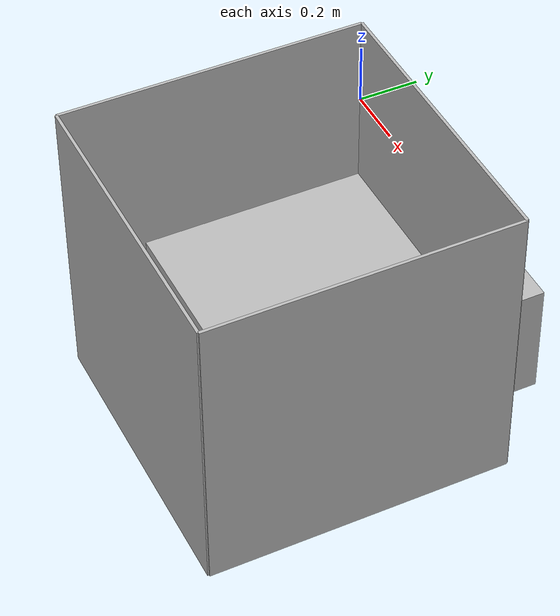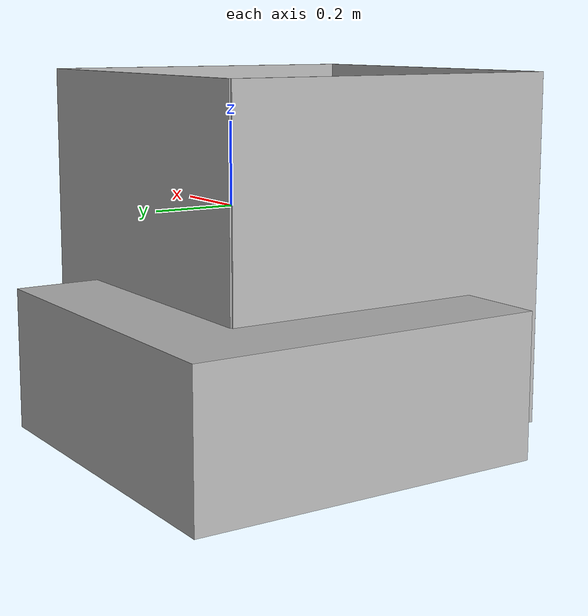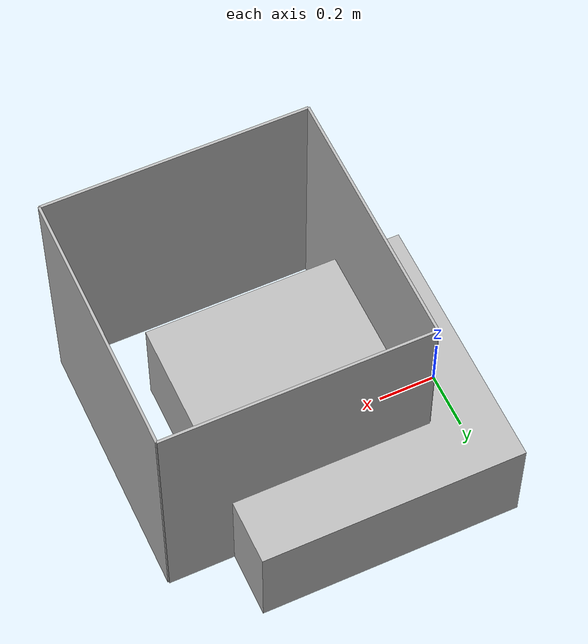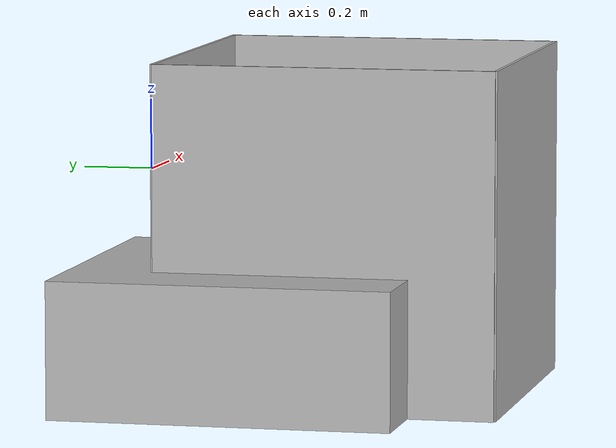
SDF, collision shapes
<?xml version="1.0" ?>
<sdf version="1.6">

  <model name="apriltag">
    <static>true</static>
    <pose>0 0 -0.2 0 0 0</pose>

    <link name="link">
      <pose>0.25 -0.25 -0.3 0 0 0</pose>
      <collision name="collision">
        <geometry>
          <box>
            <size>1 1 0.4</size>
          </box>
        </geometry>
      </collision>
      <visual name="visual">
        <geometry>
          <mesh>
            <uri>model://dock_block_2x2/mesh/dock_block_2x2.dae</uri>
          </mesh>
        </geometry>
      </visual>
    </link>

    <link name="apriltag_1">
      <pose>0 -0.5 0 0 0 0</pose>
      <gravity>0</gravity>

     <inertial>
        <mass>0.001</mass>
        <inertia> <!-- inertias are tricky to compute -->
          <!-- http://gazebosim.org/tutorials?tut=inertia&cat=build_robot -->
          <ixx>0.001</ixx>       <!-- for a box: ixx = 0.083 * mass * (y*y + z*z) -->
          <ixy>0.001</ixy>         <!-- for a box: ixy = 0 -->
          <ixz>0.001</ixz>         <!-- for a box: ixz = 0 -->
          <iyy>0.001</iyy>       <!-- for a box: iyy = 0.083 * mass * (x*x + z*z) -->
          <iyz>0.001</iyz>         <!-- for a box: iyz = 0 -->
          <izz>0.001</izz>       <!-- for a box: izz = 0.083 * mass * (x*x + y*y) -->
        </inertia>
      </inertial>

      <collision name="collision">
        <geometry>
          <box>
            <size>0.01 1 1</size>
          </box>
        </geometry>
      </collision>

      <visual name="visual">
        <geometry>
          <box>
            <size>0.01 1 1</size>
          </box>
        </geometry>
        <material>
          <script>
            <uri>model://apriltag/materials/scripts</uri>
            <uri>model://apriltag/materials/textures</uri>
            <name>a_0/Image</name>
          </script>
        </material>
      </visual>
    </link>

    <link name="apriltag_2">
      <pose>1 -0.5 0 0 0 0</pose>
      <gravity>0</gravity>

     <inertial>
        <mass>0.001</mass>
        <inertia> <!-- inertias are tricky to compute -->
          <!-- http://gazebosim.org/tutorials?tut=inertia&cat=build_robot -->
          <ixx>0.001</ixx>       <!-- for a box: ixx = 0.083 * mass * (y*y + z*z) -->
          <ixy>0.001</ixy>         <!-- for a box: ixy = 0 -->
          <ixz>0.001</ixz>         <!-- for a box: ixz = 0 -->
          <iyy>0.001</iyy>       <!-- for a box: iyy = 0.083 * mass * (x*x + z*z) -->
          <iyz>0.001</iyz>         <!-- for a box: iyz = 0 -->
          <izz>0.001</izz>       <!-- for a box: izz = 0.083 * mass * (x*x + y*y) -->
        </inertia>
      </inertial>

      <collision name="collision">
        <geometry>
          <box>
            <size>0.01 1 1</size>
          </box>
        </geometry>
      </collision>

      <visual name="visual">
        <geometry>
          <box>
            <size>0.01 1 1</size>
          </box>
        </geometry>
        <material>
          <script>
            <uri>model://apriltag/materials/scripts</uri>
            <uri>model://apriltag/materials/textures</uri>
            <name>a_0/Image</name>
          </script>
        </material>
      </visual>
    </link>

    <link name="apriltag_3">
      <pose>0.5 0 0 0 0 1.570796327</pose>
      <gravity>0</gravity>

     <inertial>
        <mass>0.001</mass>
        <inertia> <!-- inertias are tricky to compute -->
          <!-- http://gazebosim.org/tutorials?tut=inertia&cat=build_robot -->
          <ixx>0.001</ixx>       <!-- for a box: ixx = 0.083 * mass * (y*y + z*z) -->
          <ixy>0.001</ixy>         <!-- for a box: ixy = 0 -->
          <ixz>0.001</ixz>         <!-- for a box: ixz = 0 -->
          <iyy>0.001</iyy>       <!-- for a box: iyy = 0.083 * mass * (x*x + z*z) -->
          <iyz>0.001</iyz>         <!-- for a box: iyz = 0 -->
          <izz>0.001</izz>       <!-- for a box: izz = 0.083 * mass * (x*x + y*y) -->
        </inertia>
      </inertial>

      <collision name="collision">
        <geometry>
          <box>
            <size>0.01 1 1</size>
          </box>
        </geometry>
      </collision>

      <visual name="visual">
        <geometry>
          <box>
            <size>0.01 1 1</size>
          </box>
        </geometry>
        <material>
          <script>
            <uri>model://apriltag/materials/scripts</uri>
            <uri>model://apriltag/materials/textures</uri>
            <name>a_1/Image</name>
          </script>
        </material>
      </visual>
    </link>

    <link name="apriltag_4">
      <pose>0.5 -1 0 0 0 1.570796327</pose>
      <gravity>0</gravity>

     <inertial>
        <mass>0.001</mass>
        <inertia> <!-- inertias are tricky to compute -->
          <!-- http://gazebosim.org/tutorials?tut=inertia&cat=build_robot -->
          <ixx>0.001</ixx>       <!-- for a box: ixx = 0.083 * mass * (y*y + z*z) -->
          <ixy>0.001</ixy>         <!-- for a box: ixy = 0 -->
          <ixz>0.001</ixz>         <!-- for a box: ixz = 0 -->
          <iyy>0.001</iyy>       <!-- for a box: iyy = 0.083 * mass * (x*x + z*z) -->
          <iyz>0.001</iyz>         <!-- for a box: iyz = 0 -->
          <izz>0.001</izz>       <!-- for a box: izz = 0.083 * mass * (x*x + y*y) -->
        </inertia>
      </inertial>

      <collision name="collision">
        <geometry>
          <box>
            <size>0.01 1 1</size>
          </box>
        </geometry>
      </collision>

      <visual name="visual">
        <geometry>
          <box>
            <size>0.01 1 1</size>
          </box>
        </geometry>
        <material>
          <script>
            <uri>model://apriltag/materials/scripts</uri>
            <uri>model://apriltag/materials/textures</uri>
            <name>a_1/Image</name>
          </script>
        </material>
      </visual>
    </link>

  </model>
</sdf>
